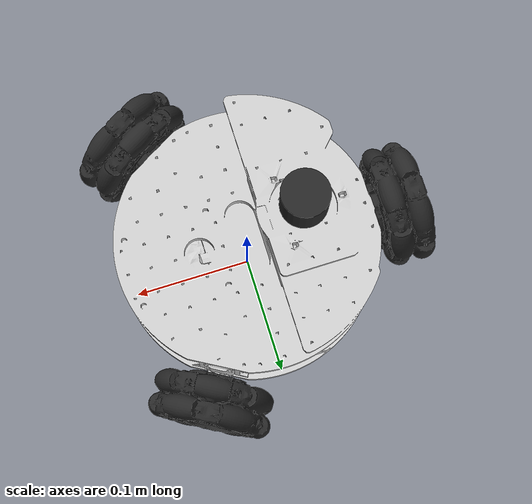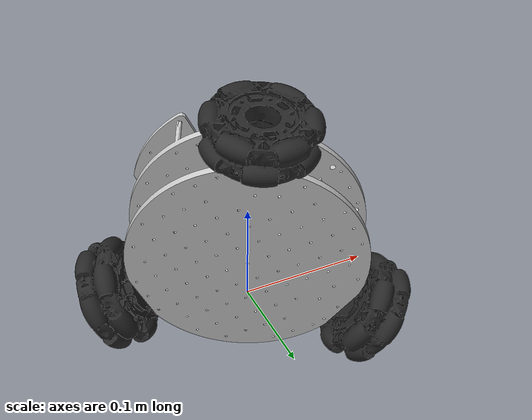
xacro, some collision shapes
<?xml version="1.0"?>
<robot xmlns:xacro="http://www.ros.org/wiki/xacro" name="lekiwi">

  <xacro:arg name="mode" default="gazebo"/>
  <xacro:arg name="controllers_file" default=""/>

  <!-- Geometrie de la base + roues + mount_link -->
  <xacro:include filename="$(find lekiwi_description)/urdf/lekiwi.base.xacro"/>

  <!-- LiDAR D500 monte sur le plateau -->
  <xacro:include filename="$(find lekiwi_description)/urdf/lekiwi.lidar.xacro"/>
  <xacro:lekiwi_lidar parent="base_link"/>

  <!-- ros2_control + Gazebo (sauf en mode display) -->
  <xacro:if value="${'$(arg mode)' == 'gazebo'}">
    <xacro:include filename="$(find lekiwi_description)/urdf/lekiwi.ros2_control.xacro"/>
    <xacro:include filename="$(find lekiwi_description)/urdf/lekiwi.gazebo.xacro"/>
    <xacro:lekiwi_ros2_control mode="gazebo"/>
    <xacro:lekiwi_gazebo controllers_file="$(arg controllers_file)"/>
  </xacro:if>

  <xacro:if value="${'$(arg mode)' == 'real'}">
    <xacro:include filename="$(find lekiwi_description)/urdf/lekiwi.ros2_control.xacro"/>
    <xacro:lekiwi_ros2_control mode="real"/>
  </xacro:if>

</robot>

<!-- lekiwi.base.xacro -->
<robot xmlns:xacro="http://www.ros.org/wiki/xacro">

  <!-- ============================ Parametres ============================ -->
  <xacro:property name="wheel_radius" value="0.051"/>
  <xacro:property name="wheel_width"  value="0.0425"/>
  <xacro:property name="robot_radius" value="0.132239"/>
  <xacro:property name="wheel_z"      value="0.01036"/>   <!-- offset roue / base_link -->
  <xacro:property name="base_offset_rz" value="${3*pi/2}"/> <!-- rotation du mesh plateau -->
  <xacro:property name="mount_z"      value="0.078"/>     <!-- pont superieur (spot bras SO-101) -->

  <!-- ============================ Materiaux ============================ -->
  <material name="lekiwi_light_grey"><color rgba="0.8 0.8 0.8 1.0"/></material>
  <material name="lekiwi_charcoal"><color rgba="0.15 0.15 0.15 1.0"/></material>
  <material name="lekiwi_orange"><color rgba="0.9 0.45 0.1 1.0"/></material>

  <!-- ===================== Macro inertie cylindre ====================== -->
  <xacro:macro name="cylinder_inertia" params="m r h">
    <inertial>
      <mass value="${m}"/>
      <inertia
        ixx="${m*(3*r*r+h*h)/12}" ixy="0.0" ixz="0.0"
        iyy="${m*(3*r*r+h*h)/12}" iyz="0.0"
        izz="${m*r*r/2}"/>
    </inertial>
  </xacro:macro>

  <!-- ===================== Macro roue omni ============================= -->
  <!-- angle = position angulaire de la roue autour du robot (rad).
       VISUAL = mesh omni_wheel.stl ; COLLISION = cylindre (axe = Z local = radial
       apres rpy="0 pi/2 angle"). -->
  <xacro:macro name="omni_wheel" params="name angle">
    <link name="${name}_link">
      <visual>
        <origin xyz="0 0 0" rpy="0 0 0"/>
        <geometry>
          <mesh filename="package://lekiwi_description/meshes/base/omni_wheel.stl"/>
        </geometry>
        <material name="lekiwi_charcoal"/>
      </visual>
      <collision>
        <origin xyz="0 0 0" rpy="0 0 0"/>
        <geometry><cylinder radius="${wheel_radius}" length="${wheel_width}"/></geometry>
      </collision>
      <xacro:cylinder_inertia m="0.1" r="${wheel_radius}" h="${wheel_width}"/>
    </link>

    <joint name="${name}_joint" type="continuous">
      <parent link="base_link"/>
      <child link="${name}_link"/>
      <origin xyz="${robot_radius*cos(angle)} ${robot_radius*sin(angle)} ${wheel_z}"
              rpy="0 ${pi/2} ${angle}"/>
      <axis xyz="0 0 1"/>
      <limit effort="2.0" velocity="20.0"/>
    </joint>
  </xacro:macro>

  <!-- ============================ base_footprint ======================= -->
  <!-- racine (sans inertie : KDL n'accepte pas d'inertie sur la racine) -->
  <link name="base_footprint"/>

  <joint name="base_footprint_joint" type="fixed">
    <parent link="base_footprint"/>
    <child link="base_link"/>
    <origin xyz="0 0 ${wheel_radius - wheel_z}" rpy="0 0 0"/>
  </joint>

  <!-- ============================ base_link / plateau ================== -->
  <link name="base_link">
    <visual>
      <origin xyz="0 0 0" rpy="0 0 ${base_offset_rz}"/>
      <geometry>
        <mesh filename="package://lekiwi_description/meshes/base/lekiwi_base.stl"/>
      </geometry>
      <material name="lekiwi_light_grey"/>
    </visual>
    <!-- collision : cylindre simple sous la hauteur du LiDAR (pas d'auto-occultation) -->
    <collision>
      <origin xyz="0 0 0.035" rpy="0 0 0"/>
      <geometry><cylinder radius="0.10" length="0.07"/></geometry>
    </collision>
    <xacro:cylinder_inertia m="2.0" r="0.10" h="0.10"/>
  </link>

  <!-- ============================ 3 roues omni ========================= -->
  <xacro:omni_wheel name="left_wheel"  angle="${pi/3}"/>      <!-- 60 deg -->
  <xacro:omni_wheel name="back_wheel"  angle="${pi}"/>        <!-- 180 deg -->
  <xacro:omni_wheel name="right_wheel" angle="${5*pi/3}"/>    <!-- 300 deg -->

  <!-- ============================ IMU BNO055 ========================== -->
  <!-- IMU 9 DoF (fusionnee a l'odometrie roues via EKF, cf. lekiwi_bringup).
       imu_link = mesh ; imu_frame = repere de publication des messages Imu. -->
  <link name="imu_link">
    <visual>
      <origin xyz="0 0 0" rpy="0 0 0"/>
      <geometry>
        <mesh filename="package://lekiwi_description/meshes/base/bno055_imu.stl"/>
      </geometry>
      <material name="lekiwi_charcoal"/>
    </visual>
  </link>

  <joint name="imu_joint" type="fixed">
    <parent link="base_link"/>
    <child link="imu_link"/>
    <origin xyz="-0.044 0 0.08" rpy="0 0 0"/>
  </joint>

  <link name="imu_frame"/>
  <joint name="imu_frame_joint" type="fixed">
    <parent link="imu_link"/>
    <child link="imu_frame"/>
    <origin xyz="0 0 0" rpy="0 0 0"/>
  </joint>

  <!-- ============================ (S20) mount du bras SO-101 ============ -->

</robot>

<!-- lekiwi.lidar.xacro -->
<robot xmlns:xacro="http://www.ros.org/wiki/xacro">

  <xacro:macro name="lekiwi_lidar" params="parent x:=-0.045042 deck_z:=0.078 laser_z:=0.115">

    <!-- Montant / standoff (support du LiDAR) -->
    <link name="lidar_standoff_link">
      <visual>
        <origin xyz="0 0 0" rpy="0 0 0"/>
        <geometry><cylinder radius="0.010" length="${laser_z - deck_z}"/></geometry>
        <material name="lekiwi_charcoal"/>
      </visual>
    </link>
    <joint name="lidar_standoff_joint" type="fixed">
      <parent link="${parent}"/>
      <child link="lidar_standoff_link"/>
      <origin xyz="${x} 0 ${(deck_z + laser_z)/2}" rpy="0 0 0"/>
    </joint>

    <!-- Corps du LiDAR (mesh) -->
    <link name="laser_link">
      <visual>
        <origin xyz="0 0 0" rpy="${pi/2} 0 0"/>
        <geometry>
          <mesh filename="package://lekiwi_description/meshes/base/ld06_lidar.stl"/>
        </geometry>
        <material name="lekiwi_charcoal"/>
      </visual>
      <collision>
        <origin xyz="0 0 0.015" rpy="0 0 0"/>
        <geometry><cylinder radius="0.019" length="0.033"/></geometry>
      </collision>
      <inertial>
        <mass value="0.05"/>
        <inertia ixx="1e-4" ixy="0" ixz="0" iyy="1e-4" iyz="0" izz="1e-4"/>
      </inertial>
    </link>

    <joint name="laser_joint" type="fixed">
      <parent link="${parent}"/>
      <child link="laser_link"/>
      <origin xyz="${x} 0 ${laser_z}" rpy="0 0 0"/>
    </joint>
  </xacro:macro>

</robot>
